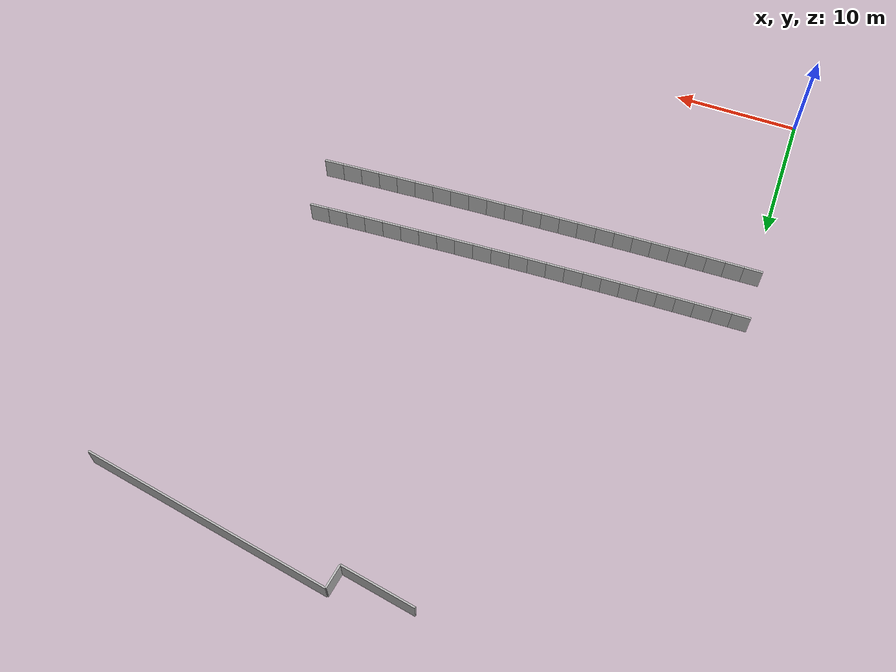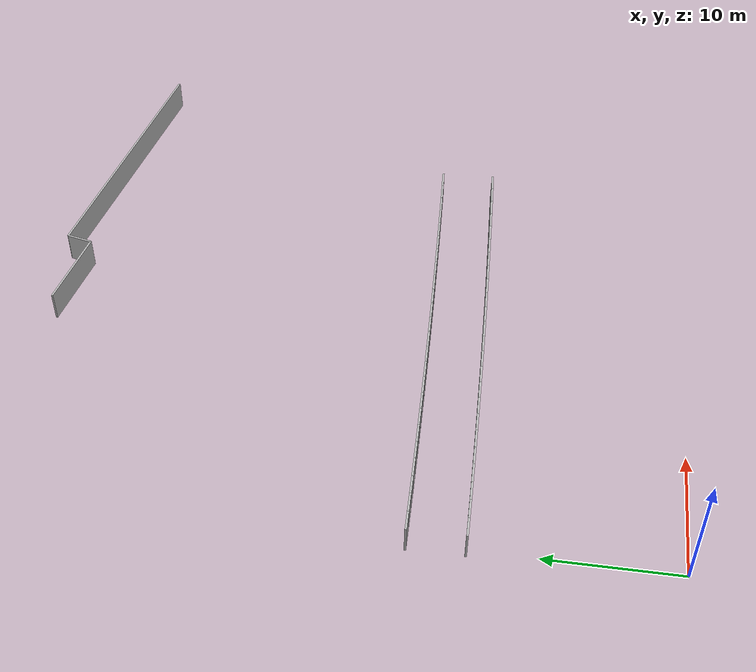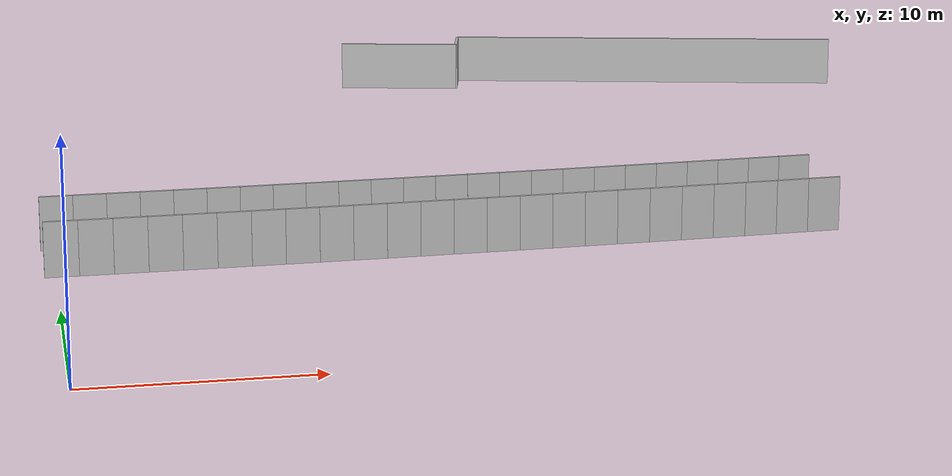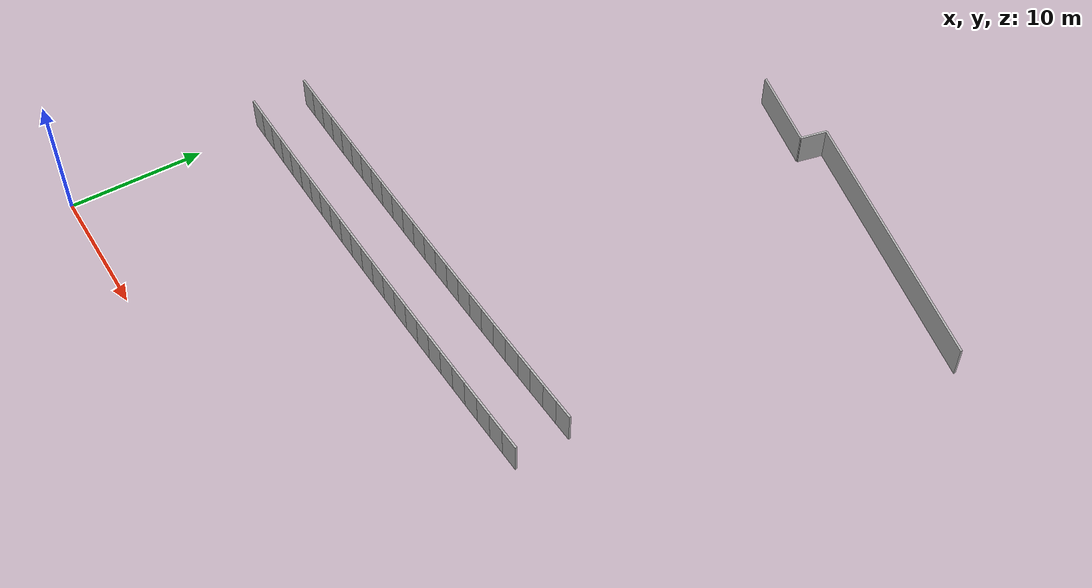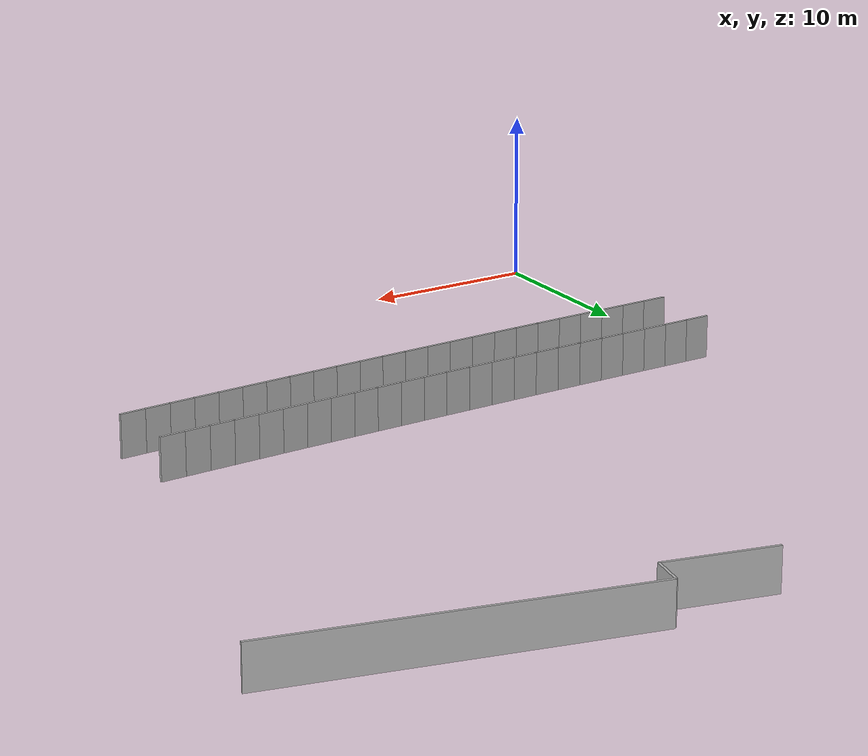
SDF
<sdf version="1.6">
 <model name="sps_2603">
  <static>1</static>
  <allow_auto_disable>0</allow_auto_disable>
  <link name="Wall981">
   <collision name="collision"><geometry><box><size>20.9004 0.15 2.5</size></box></geometry></collision>
   <visual name="visual">
    <geometry><box><size>20.9004 0.15 2.5</size></box></geometry>
    <transparency>0.0</transparency>
   </visual>
   <pose>33.8982 47.0791 1.25 0 -0 2.92735</pose>
  </link>
  <link name="Wall982">
   <collision name="collision"><geometry><box><size>2.01466 0.15 2.5</size></box></geometry></collision>
   <visual name="visual">
    <geometry><box><size>2.01466 0.15 2.5</size></box></geometry>
    <transparency>0.0</transparency>
   </visual>
   <pose>23.4727 48.3166 1.25 0 0 -1.78498</pose>
  </link>
  <link name="Wall983">
   <collision name="collision"><geometry><box><size>6.36018 0.15 2.5</size></box></geometry></collision>
   <visual name="visual">
    <geometry><box><size>6.36018 0.15 2.5</size></box></geometry>
    <transparency>0.0</transparency>
   </visual>
   <pose>20.1512 48.0084 1.25 0 -0 2.92736</pose>
  </link>
  <link name="Wall3671">
   <collision name="collision"><geometry><box><size>1.49648 0.15 2.5</size></box></geometry></collision>
   <visual name="visual">
    <geometry><box><size>1.49648 0.15 2.5</size></box></geometry>
    <transparency>0.0</transparency>
   </visual>
   <pose>0.188041 19.0983 1.25 0 -0 0.0104414</pose>
  </link>
  <link name="Wall3672">
   <collision name="collision"><geometry><box><size>1.49651 0.15 2.5</size></box></geometry></collision>
   <visual name="visual">
    <geometry><box><size>1.49651 0.15 2.5</size></box></geometry>
    <transparency>0.0</transparency>
   </visual>
   <pose>1.68444 19.1151 1.25 0 -0 0.0120319</pose>
  </link>
  <link name="Wall3673">
   <collision name="collision"><geometry><box><size>1.49678 0.15 2.5</size></box></geometry></collision>
   <visual name="visual">
    <geometry><box><size>1.49678 0.15 2.5</size></box></geometry>
    <transparency>0.0</transparency>
   </visual>
   <pose>3.18096 19.1343 1.25 0 -0 0.0136201</pose>
  </link>
  <link name="Wall3674">
   <collision name="collision"><geometry><box><size>1.49657 0.15 2.5</size></box></geometry></collision>
   <visual name="visual">
    <geometry><box><size>1.49657 0.15 2.5</size></box></geometry>
    <transparency>0.0</transparency>
   </visual>
   <pose>4.67748 19.1559 1.25 0 -0 0.0152535</pose>
  </link>
  <link name="Wall3675">
   <collision name="collision"><geometry><box><size>1.49636 0.15 2.5</size></box></geometry></collision>
   <visual name="visual">
    <geometry><box><size>1.49636 0.15 2.5</size></box></geometry>
    <transparency>0.0</transparency>
   </visual>
   <pose>6.17376 19.1798 1.25 0 -0 0.0166835</pose>
  </link>
  <link name="Wall3676">
   <collision name="collision"><geometry><box><size>1.49647 0.15 2.5</size></box></geometry></collision>
   <visual name="visual">
    <geometry><box><size>1.49647 0.15 2.5</size></box></geometry>
    <transparency>0.0</transparency>
   </visual>
   <pose>7.66994 19.2061 1.25 0 -0 0.0184364</pose>
  </link>
  <link name="Wall3677">
   <collision name="collision"><geometry><box><size>1.49651 0.15 2.5</size></box></geometry></collision>
   <visual name="visual">
    <geometry><box><size>1.49651 0.15 2.5</size></box></geometry>
    <transparency>0.0</transparency>
   </visual>
   <pose>9.16616 19.2348 1.25 0 -0 0.0199451</pose>
  </link>
  <link name="Wall3678">
   <collision name="collision"><geometry><box><size>1.49656 0.15 2.5</size></box></geometry></collision>
   <visual name="visual">
    <geometry><box><size>1.49656 0.15 2.5</size></box></geometry>
    <transparency>0.0</transparency>
   </visual>
   <pose>10.6624 19.2658 1.25 0 -0 0.0214946</pose>
  </link>
  <link name="Wall3679">
   <collision name="collision"><geometry><box><size>1.49655 0.15 2.5</size></box></geometry></collision>
   <visual name="visual">
    <geometry><box><size>1.49655 0.15 2.5</size></box></geometry>
    <transparency>0.0</transparency>
   </visual>
   <pose>12.1586 19.2992 1.25 0 -0 0.0231265</pose>
  </link>
  <link name="Wall3680">
   <collision name="collision"><geometry><box><size>1.49649 0.15 2.5</size></box></geometry></collision>
   <visual name="visual">
    <geometry><box><size>1.49649 0.15 2.5</size></box></geometry>
    <transparency>0.0</transparency>
   </visual>
   <pose>13.6547 19.335 1.25 0 -0 0.0247186</pose>
  </link>
  <link name="Wall3681">
   <collision name="collision"><geometry><box><size>1.49649 0.15 2.5</size></box></geometry></collision>
   <visual name="visual">
    <geometry><box><size>1.49649 0.15 2.5</size></box></geometry>
    <transparency>0.0</transparency>
   </visual>
   <pose>15.1507 19.3731 1.25 0 -0 0.0262282</pose>
  </link>
  <link name="Wall3682">
   <collision name="collision"><geometry><box><size>1.49661 0.15 2.5</size></box></geometry></collision>
   <visual name="visual">
    <geometry><box><size>1.49661 0.15 2.5</size></box></geometry>
    <transparency>0.0</transparency>
   </visual>
   <pose>16.6467 19.4135 1.25 0 -0 0.0277763</pose>
  </link>
  <link name="Wall3683">
   <collision name="collision"><geometry><box><size>1.49662 0.15 2.5</size></box></geometry></collision>
   <visual name="visual">
    <geometry><box><size>1.49662 0.15 2.5</size></box></geometry>
    <transparency>0.0</transparency>
   </visual>
   <pose>18.1427 19.4564 1.25 0 -0 0.0295304</pose>
  </link>
  <link name="Wall3684">
   <collision name="collision"><geometry><box><size>1.49651 0.15 2.5</size></box></geometry></collision>
   <visual name="visual">
    <geometry><box><size>1.49651 0.15 2.5</size></box></geometry>
    <transparency>0.0</transparency>
   </visual>
   <pose>19.6385 19.5017 1.25 0 -0 0.0310424</pose>
  </link>
  <link name="Wall3685">
   <collision name="collision"><geometry><box><size>1.49641 0.15 2.5</size></box></geometry></collision>
   <visual name="visual">
    <geometry><box><size>1.49641 0.15 2.5</size></box></geometry>
    <transparency>0.0</transparency>
   </visual>
   <pose>21.1342 19.5494 1.25 0 -0 0.0327177</pose>
  </link>
  <link name="Wall3686">
   <collision name="collision"><geometry><box><size>1.49666 0.15 2.5</size></box></geometry></collision>
   <visual name="visual">
    <geometry><box><size>1.49666 0.15 2.5</size></box></geometry>
    <transparency>0.0</transparency>
   </visual>
   <pose>22.6299 19.5995 1.25 0 -0 0.0342218</pose>
  </link>
  <link name="Wall3687">
   <collision name="collision"><geometry><box><size>1.49656 0.15 2.5</size></box></geometry></collision>
   <visual name="visual">
    <geometry><box><size>1.49656 0.15 2.5</size></box></geometry>
    <transparency>0.0</transparency>
   </visual>
   <pose>24.1256 19.6518 1.25 0 -0 0.0356933</pose>
  </link>
  <link name="Wall3688">
   <collision name="collision"><geometry><box><size>1.49665 0.15 2.5</size></box></geometry></collision>
   <visual name="visual">
    <geometry><box><size>1.49665 0.15 2.5</size></box></geometry>
    <transparency>0.0</transparency>
   </visual>
   <pose>25.6212 19.7065 1.25 0 -0 0.0374458</pose>
  </link>
  <link name="Wall3689">
   <collision name="collision"><geometry><box><size>1.49637 0.15 2.5</size></box></geometry></collision>
   <visual name="visual">
    <geometry><box><size>1.49637 0.15 2.5</size></box></geometry>
    <transparency>0.0</transparency>
   </visual>
   <pose>27.1167 19.7636 1.25 0 -0 0.0388815</pose>
  </link>
  <link name="Wall3690">
   <collision name="collision"><geometry><box><size>1.4966 0.15 2.5</size></box></geometry></collision>
   <visual name="visual">
    <geometry><box><size>1.4966 0.15 2.5</size></box></geometry>
    <transparency>0.0</transparency>
   </visual>
   <pose>28.612 19.8231 1.25 0 -0 0.0406307</pose>
  </link>
  <link name="Wall3691">
   <collision name="collision"><geometry><box><size>1.49657 0.15 2.5</size></box></geometry></collision>
   <visual name="visual">
    <geometry><box><size>1.49657 0.15 2.5</size></box></geometry>
    <transparency>0.0</transparency>
   </visual>
   <pose>30.1073 19.885 1.25 0 -0 0.0421417</pose>
  </link>
  <link name="Wall3692">
   <collision name="collision"><geometry><box><size>1.49642 0.15 2.5</size></box></geometry></collision>
   <visual name="visual">
    <geometry><box><size>1.49642 0.15 2.5</size></box></geometry>
    <transparency>0.0</transparency>
   </visual>
   <pose>31.6024 19.9492 1.25 0 -0 0.0436972</pose>
  </link>
  <link name="Wall3693">
   <collision name="collision"><geometry><box><size>1.49653 0.15 2.5</size></box></geometry></collision>
   <visual name="visual">
    <geometry><box><size>1.49653 0.15 2.5</size></box></geometry>
    <transparency>0.0</transparency>
   </visual>
   <pose>33.0974 20.0158 1.25 0 -0 0.045327</pose>
  </link>
  <link name="Wall3694">
   <collision name="collision"><geometry><box><size>1.49663 0.15 2.5</size></box></geometry></collision>
   <visual name="visual">
    <geometry><box><size>1.49663 0.15 2.5</size></box></geometry>
    <transparency>0.0</transparency>
   </visual>
   <pose>34.5924 20.0847 1.25 0 -0 0.0467936</pose>
  </link>
  <link name="Wall7446">
   <collision name="collision"><geometry><box><size>1.50307 0.15 2.5</size></box></geometry></collision>
   <visual name="visual">
    <geometry><box><size>1.50307 0.15 2.5</size></box></geometry>
    <transparency>0.0</transparency>
   </visual>
   <pose>0.234733 14.9581 1.25 0 -0 0.0103956</pose>
  </link>
  <link name="Wall7447">
   <collision name="collision"><geometry><box><size>1.50316 0.15 2.5</size></box></geometry></collision>
   <visual name="visual">
    <geometry><box><size>1.50316 0.15 2.5</size></box></geometry>
    <transparency>0.0</transparency>
   </visual>
   <pose>1.73775 14.975 1.25 0 -0 0.0121004</pose>
  </link>
  <link name="Wall7448">
   <collision name="collision"><geometry><box><size>1.50313 0.15 2.5</size></box></geometry></collision>
   <visual name="visual">
    <geometry><box><size>1.50313 0.15 2.5</size></box></geometry>
    <transparency>0.0</transparency>
   </visual>
   <pose>3.24078 14.9943 1.25 0 -0 0.0135626</pose>
  </link>
  <link name="Wall7449">
   <collision name="collision"><geometry><box><size>1.50298 0.15 2.5</size></box></geometry></collision>
   <visual name="visual">
    <geometry><box><size>1.50298 0.15 2.5</size></box></geometry>
    <transparency>0.0</transparency>
   </visual>
   <pose>4.74367 15.0159 1.25 0 -0 0.0151885</pose>
  </link>
  <link name="Wall7450">
   <collision name="collision"><geometry><box><size>1.50302 0.15 2.5</size></box></geometry></collision>
   <visual name="visual">
    <geometry><box><size>1.50302 0.15 2.5</size></box></geometry>
    <transparency>0.0</transparency>
   </visual>
   <pose>6.24648 15.0399 1.25 0 -0 0.016772</pose>
  </link>
  <link name="Wall7451">
   <collision name="collision"><geometry><box><size>1.50324 0.15 2.5</size></box></geometry></collision>
   <visual name="visual">
    <geometry><box><size>1.50324 0.15 2.5</size></box></geometry>
    <transparency>0.0</transparency>
   </visual>
   <pose>7.74938 15.0663 1.25 0 -0 0.0183533</pose>
  </link>
  <link name="Wall7452">
   <collision name="collision"><geometry><box><size>1.50286 0.15 2.5</size></box></geometry></collision>
   <visual name="visual">
    <geometry><box><size>1.50286 0.15 2.5</size></box></geometry>
    <transparency>0.0</transparency>
   </visual>
   <pose>9.25216 15.0951 1.25 0 -0 0.0199827</pose>
  </link>
  <link name="Wall7453">
   <collision name="collision"><geometry><box><size>1.50316 0.15 2.5</size></box></geometry></collision>
   <visual name="visual">
    <geometry><box><size>1.50316 0.15 2.5</size></box></geometry>
    <transparency>0.0</transparency>
   </visual>
   <pose>10.7548 15.1263 1.25 0 -0 0.0215221</pose>
  </link>
  <link name="Wall7454">
   <collision name="collision"><geometry><box><size>1.50321 0.15 2.5</size></box></geometry></collision>
   <visual name="visual">
    <geometry><box><size>1.50321 0.15 2.5</size></box></geometry>
    <transparency>0.0</transparency>
   </visual>
   <pose>12.2577 15.1599 1.25 0 -0 0.0231865</pose>
  </link>
  <link name="Wall7455">
   <collision name="collision"><geometry><box><size>1.50308 0.15 2.5</size></box></geometry></collision>
   <visual name="visual">
    <geometry><box><size>1.50308 0.15 2.5</size></box></geometry>
    <transparency>0.0</transparency>
   </visual>
   <pose>13.7604 15.1959 1.25 0 -0 0.0247319</pose>
  </link>
  <link name="Wall7456">
   <collision name="collision"><geometry><box><size>1.50308 0.15 2.5</size></box></geometry></collision>
   <visual name="visual">
    <geometry><box><size>1.50308 0.15 2.5</size></box></geometry>
    <transparency>0.0</transparency>
   </visual>
   <pose>15.263 15.2342 1.25 0 -0 0.0262349</pose>
  </link>
  <link name="Wall7457">
   <collision name="collision"><geometry><box><size>1.50302 0.15 2.5</size></box></geometry></collision>
   <visual name="visual">
    <geometry><box><size>1.50302 0.15 2.5</size></box></geometry>
    <transparency>0.0</transparency>
   </visual>
   <pose>16.7655 15.2748 1.25 0 -0 0.0277797</pose>
  </link>
  <link name="Wall7458">
   <collision name="collision"><geometry><box><size>1.50304 0.15 2.5</size></box></geometry></collision>
   <visual name="visual">
    <geometry><box><size>1.50304 0.15 2.5</size></box></geometry>
    <transparency>0.0</transparency>
   </visual>
   <pose>18.2679 15.3179 1.25 0 -0 0.0295668</pose>
  </link>
  <link name="Wall7459">
   <collision name="collision"><geometry><box><size>1.5031 0.15 2.5</size></box></geometry></collision>
   <visual name="visual">
    <geometry><box><size>1.5031 0.15 2.5</size></box></geometry>
    <transparency>0.0</transparency>
   </visual>
   <pose>19.7703 15.3634 1.25 0 -0 0.0309874</pose>
  </link>
  <link name="Wall7460">
   <collision name="collision"><geometry><box><size>1.503 0.15 2.5</size></box></geometry></collision>
   <visual name="visual">
    <geometry><box><size>1.503 0.15 2.5</size></box></geometry>
    <transparency>0.0</transparency>
   </visual>
   <pose>21.2725 15.4112 1.25 0 -0 0.0326148</pose>
  </link>
  <link name="Wall7461">
   <collision name="collision"><geometry><box><size>1.50308 0.15 2.5</size></box></geometry></collision>
   <visual name="visual">
    <geometry><box><size>1.50308 0.15 2.5</size></box></geometry>
    <transparency>0.0</transparency>
   </visual>
   <pose>22.7747 15.4614 1.25 0 -0 0.0341976</pose>
  </link>
  <link name="Wall7462">
   <collision name="collision"><geometry><box><size>1.50317 0.15 2.5</size></box></geometry></collision>
   <visual name="visual">
    <geometry><box><size>1.50317 0.15 2.5</size></box></geometry>
    <transparency>0.0</transparency>
   </visual>
   <pose>24.2769 15.5141 1.25 0 -0 0.0359426</pose>
  </link>
  <link name="Wall7463">
   <collision name="collision"><geometry><box><size>1.50324 0.15 2.5</size></box></geometry></collision>
   <visual name="visual">
    <geometry><box><size>1.50324 0.15 2.5</size></box></geometry>
    <transparency>0.0</transparency>
   </visual>
   <pose>25.7791 15.5691 1.25 0 -0 0.0372816</pose>
  </link>
  <link name="Wall7464">
   <collision name="collision"><geometry><box><size>1.50297 0.15 2.5</size></box></geometry></collision>
   <visual name="visual">
    <geometry><box><size>1.50297 0.15 2.5</size></box></geometry>
    <transparency>0.0</transparency>
   </visual>
   <pose>27.2812 15.6264 1.25 0 -0 0.0389951</pose>
  </link>
  <link name="Wall7465">
   <collision name="collision"><geometry><box><size>1.50325 0.15 2.5</size></box></geometry></collision>
   <visual name="visual">
    <geometry><box><size>1.50325 0.15 2.5</size></box></geometry>
    <transparency>0.0</transparency>
   </visual>
   <pose>28.7831 15.6862 1.25 0 -0 0.0405726</pose>
  </link>
  <link name="Wall7466">
   <collision name="collision"><geometry><box><size>1.50292 0.15 2.5</size></box></geometry></collision>
   <visual name="visual">
    <geometry><box><size>1.50292 0.15 2.5</size></box></geometry>
    <transparency>0.0</transparency>
   </visual>
   <pose>30.2849 15.7483 1.25 0 -0 0.0420855</pose>
  </link>
  <link name="Wall7467">
   <collision name="collision"><geometry><box><size>1.5032 0.15 2.5</size></box></geometry></collision>
   <visual name="visual">
    <geometry><box><size>1.5032 0.15 2.5</size></box></geometry>
    <transparency>0.0</transparency>
   </visual>
   <pose>31.7866 15.8127 1.25 0 -0 0.043622</pose>
  </link>
  <link name="Wall7468">
   <collision name="collision"><geometry><box><size>1.50295 0.15 2.5</size></box></geometry></collision>
   <visual name="visual">
    <geometry><box><size>1.50295 0.15 2.5</size></box></geometry>
    <transparency>0.0</transparency>
   </visual>
   <pose>33.2881 15.8796 1.25 0 -0 0.0454177</pose>
  </link>
  <link name="Wall7469">
   <collision name="collision"><geometry><box><size>1.50305 0.15 2.5</size></box></geometry></collision>
   <visual name="visual">
    <geometry><box><size>1.50305 0.15 2.5</size></box></geometry>
    <transparency>0.0</transparency>
   </visual>
   <pose>34.7895 15.9489 1.25 0 -0 0.0468375</pose>
  </link>
 </model>
</sdf>
